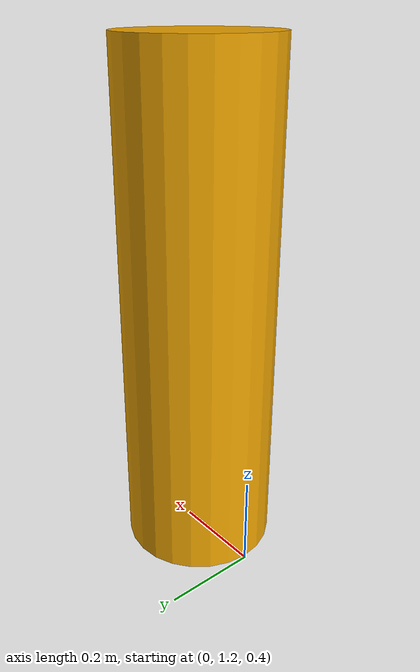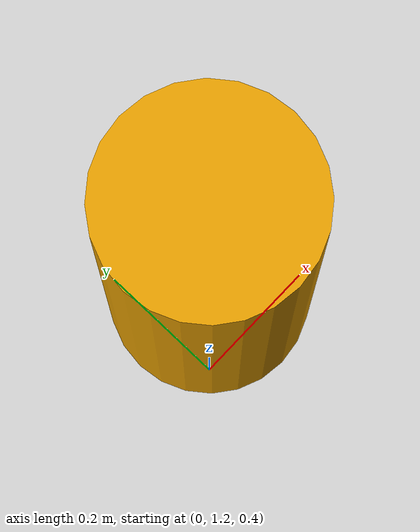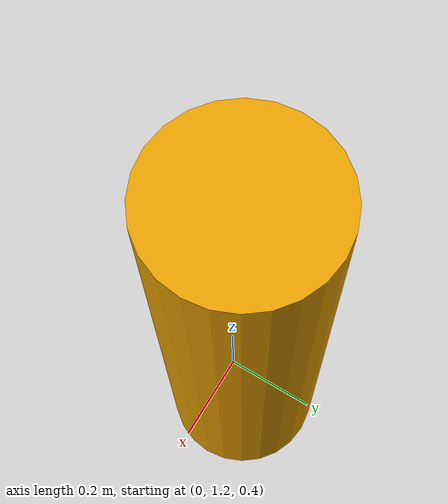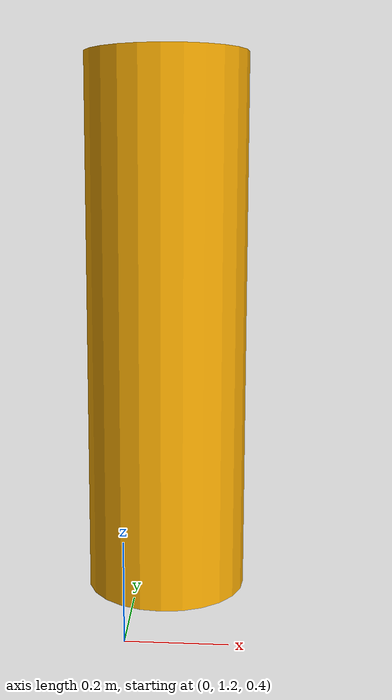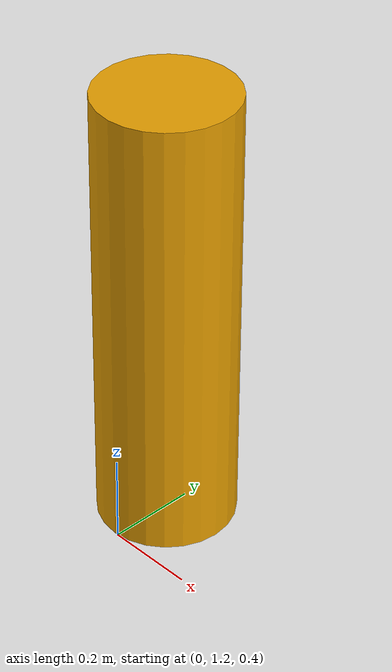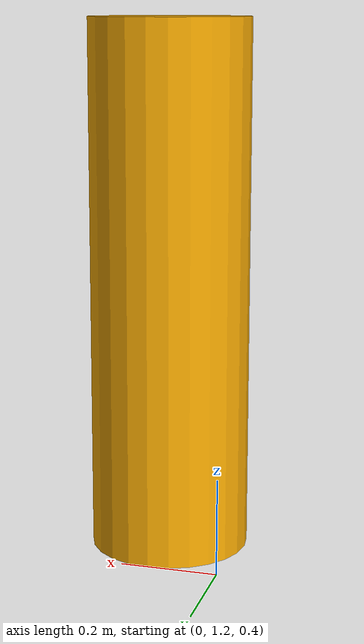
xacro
<robot xmlns:xacro="http://www.ros.org/wiki/xacro" name="box">
  <xacro:property name="shape_name" value="Cylinder" />
  <xacro:property name="length" value="1" />
  <xacro:property name="width" value="0.118964696404" />
  <xacro:property name="height" value="0.251746045259" />
  <xacro:property name="radius" value="0.149666197383" />
  <xacro:property name="xyz" value="0.0382408605656 0.636272461865 0.5" />
  <xacro:property name="rpy" value="0 0 0" />
  <xacro:property name="mass" value="10" />

  <xacro:include filename="$(find franka_description)/robots/utils.xacro" />

  <xacro:if value="${shape_name == 'Box'}">
    <link name="Box">
      <inertial>
        <origin rpy="${rpy}" xyz="${xyz}" />
        <mass value="${mass}" />
        <cuboid_inertia_def height="${height}" length="${length}" mass="${mass}" width="${width}" />
      </inertial>
      <visual>
        <origin rpy="${rpy}" xyz="${xyz}" />
        <geometry>
          <box size="${length} ${width} ${height}" />
        </geometry>
      </visual>
      <collision>
        <origin rpy="${rpy}" xyz="${xyz}" />
        <geometry>
          <box size="${length} ${width} ${height}" />
        </geometry>
      </collision>
    </link>
    <gazebo>
      <material>Gazebo/Blue</material>
      <static>true</static>
    </gazebo>
  </xacro:if>

  <xacro:if value="${shape_name == 'Sphere'}">
    <link name="Sphere">
      <inertial>
        <origin rpy="${rpy}" xyz="${xyz}" />
        <mass value="${mass}" />
        <sphere_inertia_def mass="${mass}" radius="${radius}" />
      </inertial>
      <visual>
        <origin rpy="${rpy}" xyz="${xyz}" />
        <geometry>
          <sphere radius="${radius}" />
        </geometry>
      </visual>
      <collision>
        <origin rpy="${rpy}" xyz="${xyz}" />
        <geometry>
          <sphere radius="${radius}" />
        </geometry>
      </collision>
    </link>
    <gazebo>
      <material>Gazebo/Blue</material>
      <static>true</static>
    </gazebo>
  </xacro:if>

  <xacro:if value="${shape_name == 'Cylinder'}">
    <link name="Cylinder">
      <inertial>
        <origin rpy="${rpy}" xyz="${xyz}" />
        <mass value="${mass}" />
        <cylinder_inertia_def length="${length}" mass="${mass}" radius="${radius}" />
      </inertial>
      <visual>
        <origin rpy="${rpy}" xyz="${xyz}" />
        <geometry>
          <cylinder length="${length}" radius="${radius}" />
        </geometry>
      </visual>
      <collision>
        <origin rpy="${rpy}" xyz="${xyz}" />
        <geometry>
          <cylinder length="${length}" radius="${radius}" />
        </geometry>
      </collision>
    </link>
    <gazebo>
      <material>Gazebo/Blue</material>
      <static>true</static>
    </gazebo>
  </xacro:if>

  <link name="world" />
    <joint name="world_joint" type="fixed">
      <origin rpy="${rpy}" xyz="${xyz}" />
      <parent link="world" />
      <child link="${shape_name}" />
    </joint>
</robot>

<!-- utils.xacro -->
<robot xmlns:xacro="http://www.ros.org/wiki/xacro">
  <xacro:macro name="gazebo-friction" params="link mu">
    <gazebo reference="${link}">
      <collision>
        <max_contacts>10</max_contacts>
        <surface>
          <contact>
            <ode>
              <!-- These two parameter need application specific tuning. -->
              <!-- Usually you want no "snap out" velocity and a generous -->
              <!-- penetration depth to keep the grasping stable -->
              <max_vel>0</max_vel>
              <min_depth>0.003</min_depth>
            </ode>
          </contact>
          <friction>
            <ode>
              <mu>${mu}</mu>
              <mu2>${mu}</mu2>
            </ode>
          </friction>
          <bounce/>
        </surface>
      </collision>
    </gazebo>
  </xacro:macro>

  <xacro:macro name="inertia-cylinder" params="mass radius h">
    <inertial>
      <mass value="${mass}" />
      <inertia ixx="${1./12 * mass * (3 * radius**2 + h**2)}" ixy = "0" ixz = "0"
               iyy="${1./12 * mass * (3 * radius**2 + h**2)}" iyz = "0"
               izz="${1./2  * mass * radius**2}" />
    </inertial>
  </xacro:macro>

  <!-- taken from https://github.com/epfl-lasa/kuka-lwr-ros/blob/2533aa1bb521d531845cea45c93a4ded1ccf6539/kuka_lwr/lwr_description/model/utils.xacro -->
  <xacro:property name="M_PI" value="3.1415926535897931"/>

  <!-- Little helper macro to define the inertia matrix needed for links. -->
  <xacro:macro name="cuboid_inertia_def" params="width height length mass">
    <inertia ixx="${mass * (height * height + length * length) / 12}"
             iyy="${mass * (width * width + length * length) / 12}"
             izz="${mass * (width * width + height * height) / 12}"
             ixy="0" iyz="0" ixz="0"/>
  </xacro:macro>

  <!-- length is along the z-axis! -->
  <xacro:macro name="cylinder_inertia_def" params="radius length mass">
    <inertia ixx="${mass * (3 * radius * radius + length * length) / 12}"
             iyy="${mass * (3 * radius * radius + length * length) / 12}"
             izz="${mass * radius* radius / 2}"
             ixy="0" iyz="0" ixz="0"/>
  </xacro:macro>

  <xacro:macro name="sphere_inertia_def" params="radius mass">
    <inertia ixx="${2 * mass * radius * radius / 5}"
             iyy="${2 * mass * radius * radius / 5}"
             izz="${2 * mass * radius * radius / 5}"
             ixy="0" iyz="0" ixz="0"/>
  </xacro:macro>

</robot>
